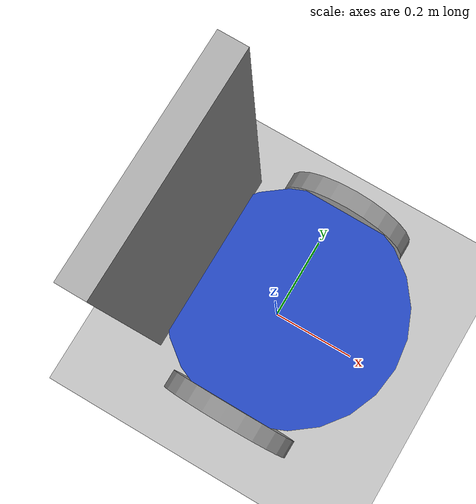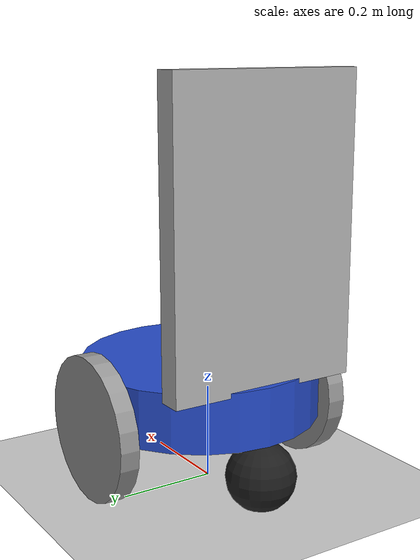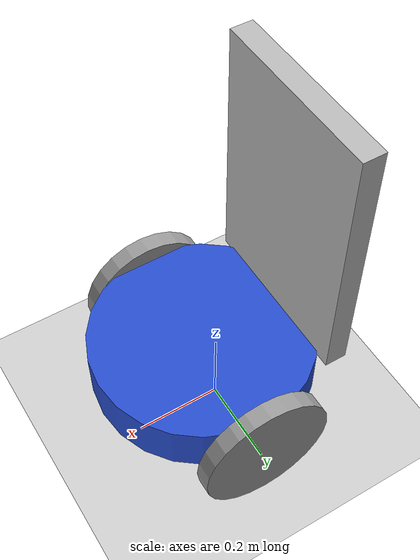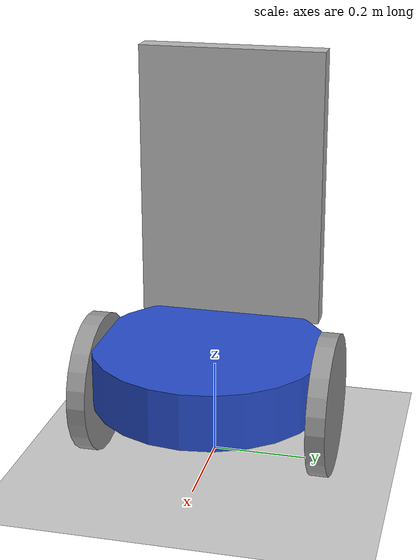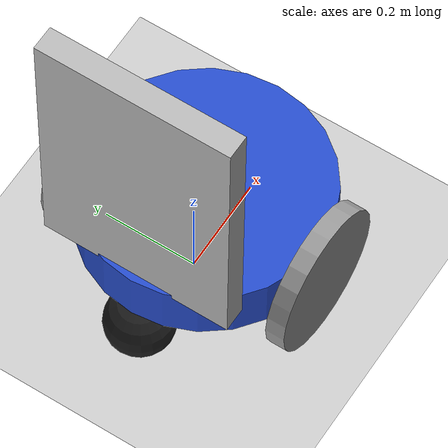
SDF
<sdf version="1.6">
 <world name="default">
  <light name="sun" type="directional">
   <pose>0 0 10 0 -0 0</pose>
   <diffuse>0.8 0.8 0.8 1</diffuse>
   <specular>0.2 0.2 0.2 1</specular>
   <attenuation>
    <range>1000</range>
    <constant>0.9</constant>
    <linear>0.01</linear>
    <quadratic>0.001</quadratic>
   </attenuation>
   <direction>-0.5 0.1 -0.9</direction>
  </light>
  <model name="ground_plane">
   <static>1</static>
   <link name="link">
    <collision name="collision">
     <geometry><plane><normal>0 0 1</normal><size>100 100</size></plane></geometry>
     <surface><friction><ode><mu>100</mu><mu2>50</mu2></ode></friction></surface>
    </collision>
    <visual name="visual">
     <cast_shadows>0</cast_shadows>
     <geometry><plane><normal>0 0 1</normal><size>100 100</size></plane></geometry>
     <material>
      <script><uri>file://media/materials/scripts/gazebo.material</uri><name>Gazebo/Grey</name></script>
     </material>
    </visual>
   </link>
  </model>
  <gravity>0 0 -9.8</gravity>
  <magnetic_field>6e-06 2.3e-05 -4.2e-05</magnetic_field>
  <atmosphere type="adiabatic"/>
  <physics name="default_physics" default="0" type="ode">
   <max_step_size>0.001</max_step_size>
   <real_time_factor>1</real_time_factor>
   <real_time_update_rate>1000</real_time_update_rate>
  </physics>
  <scene><ambient>0.4 0.4 0.4 1</ambient><background>0.7 0.7 0.7 1</background><shadows>1</shadows></scene>
  <audio><device>default</device></audio>
  <spherical_coordinates>
   <surface_model>EARTH_WGS84</surface_model>
   <latitude_deg>0</latitude_deg>
   <longitude_deg>0</longitude_deg>
   <elevation>0</elevation>
   <heading_deg>0</heading_deg>
  </spherical_coordinates>
  <model name="mrobot">
   <link name="base_footprint">
    <inertial>
     <pose>0 0 0.202 0 -0 0</pose>
     <mass>20</mass>
     <inertia><ixx>0.3365</ixx><ixy>0</ixy><ixz>0</ixz><iyy>0.3365</iyy><iyz>0</iyz><izz>0.625</izz></inertia>
    </inertial>
    <collision name="base_footprint_fixed_joint_lump__base_link_collision">
     <pose>0 0 0.202 0 -0 0</pose>
     <geometry><cylinder><length>0.12</length><radius>0.25</radius></cylinder></geometry>
    </collision>
    <collision name="base_footprint_fixed_joint_lump__back_link_collision_1">
     <pose>-0.21 0 0.552 0 -0 0</pose>
     <geometry><box><size>0.05 0.4 0.6</size></box></geometry>
    </collision>
    <visual name="base_footprint_visual">
     <geometry><box><size>0.001 0.001 0.001</size></box></geometry>
     <material><script><uri>__default__</uri><name>__default__</name></script></material>
    </visual>
    <visual name="base_footprint_fixed_joint_lump__base_link_visual_1">
     <pose>0 0 0.202 0 -0 0</pose>
     <geometry><cylinder><length>0.12</length><radius>0.25</radius></cylinder></geometry>
     <material>
      <script><name>Gazebo/Blue</name><uri>file://media/materials/scripts/gazebo.material</uri></script>
     </material>
    </visual>
    <visual name="base_footprint_fixed_joint_lump__back_link_visual_2">
     <pose>-0.21 0 0.552 0 -0 0</pose>
     <geometry><box><size>0.05 0.4 0.6</size></box></geometry>
    </visual>
   </link>
   <link name="front_caster_link">
    <pose>-0.222 0 0.071 0 -0 0</pose>
    <inertial>
     <mass>2</mass>
     <inertia>
      <ixx>0.0040328</ixx>
      <ixy>0</ixy>
      <ixz>0</ixz>
      <iyy>0.0040328</iyy>
      <iyz>0</iyz>
      <izz>0.0040328</izz>
     </inertia>
    </inertial>
    <collision name="front_caster_link_collision">
     <geometry><sphere><radius>0.071</radius></sphere></geometry>
    </collision>
    <visual name="front_caster_link_visual">
     <geometry><sphere><radius>0.071</radius></sphere></geometry>
     <material>
      <script><name>Gazebo/Black</name><uri>file://media/materials/scripts/gazebo.material</uri></script>
     </material>
    </visual>
   </link>
   <joint name="front_caster_joint" type="revolute">
    <child>front_caster_link</child>
    <parent>base_footprint</parent>
    <axis>
     <xyz>0 1 0</xyz>
     <limit><lower>-1e+16</lower><upper>1e+16</upper></limit>
     <dynamics><spring_reference>0</spring_reference><spring_stiffness>0</spring_stiffness></dynamics>
     <use_parent_model_frame>1</use_parent_model_frame>
    </axis>
   </joint>
   <link name="left_wheel_link">
    <pose>0 -0.25 0.152 0 -0 0</pose>
    <inertial>
     <mass>2</mass>
     <inertia>
      <ixx>0.0115167</ixx>
      <ixy>0</ixy>
      <ixz>0</ixz>
      <iyy>0.0115167</iyy>
      <iyz>0</iyz>
      <izz>0.0225</izz>
     </inertia>
    </inertial>
    <collision name="left_wheel_link_collision">
     <pose>0 0 0 1.5708 -0 0</pose>
     <geometry><cylinder><length>0.04</length><radius>0.15</radius></cylinder></geometry>
    </collision>
    <visual name="left_wheel_link_visual">
     <pose>0 0 0 1.5708 -0 0</pose>
     <geometry><cylinder><length>0.04</length><radius>0.15</radius></cylinder></geometry>
     <material>
      <script><name>Gazebo/Gray</name><uri>file://media/materials/scripts/gazebo.material</uri></script>
     </material>
    </visual>
   </link>
   <joint name="left_wheel_joint" type="revolute">
    <child>left_wheel_link</child>
    <parent>base_footprint</parent>
    <axis>
     <xyz>0 1 0</xyz>
     <limit><lower>-1e+16</lower><upper>1e+16</upper></limit>
     <dynamics><spring_reference>0</spring_reference><spring_stiffness>0</spring_stiffness></dynamics>
     <use_parent_model_frame>1</use_parent_model_frame>
    </axis>
   </joint>
   <link name="right_wheel_link">
    <pose>0 0.25 0.152 0 -0 0</pose>
    <inertial>
     <mass>2</mass>
     <inertia>
      <ixx>0.0115167</ixx>
      <ixy>0</ixy>
      <ixz>0</ixz>
      <iyy>0.0115167</iyy>
      <iyz>0</iyz>
      <izz>0.0225</izz>
     </inertia>
    </inertial>
    <collision name="right_wheel_link_collision">
     <pose>0 0 0 1.5708 -0 0</pose>
     <geometry><cylinder><length>0.04</length><radius>0.15</radius></cylinder></geometry>
    </collision>
    <visual name="right_wheel_link_visual">
     <pose>0 0 0 1.5708 -0 0</pose>
     <geometry><cylinder><length>0.04</length><radius>0.15</radius></cylinder></geometry>
     <material>
      <script><name>Gazebo/Gray</name><uri>file://media/materials/scripts/gazebo.material</uri></script>
     </material>
    </visual>
   </link>
   <joint name="right_wheel_joint" type="revolute">
    <child>right_wheel_link</child>
    <parent>base_footprint</parent>
    <axis>
     <xyz>0 1 0</xyz>
     <limit><lower>-1e+16</lower><upper>1e+16</upper></limit>
     <dynamics><spring_reference>0</spring_reference><spring_stiffness>0</spring_stiffness></dynamics>
     <use_parent_model_frame>1</use_parent_model_frame>
    </axis>
   </joint>
   <static>0</static>
   <plugin name="differential_drive_controller" filename="libgazebo_ros_diff_drive.so">
    <rosDebugLevel>Debug</rosDebugLevel>
    <publishWheelTF>1</publishWheelTF>
    <robotNamespace>/</robotNamespace>
    <publishTf>1</publishTf>
    <publishWheelJointState>1</publishWheelJointState>
    <alwaysOn>1</alwaysOn>
    <updateRate>100.0</updateRate>
    <legacyMode>1</legacyMode>
    <leftJoint>left_wheel_joint</leftJoint>
    <rightJoint>right_wheel_joint</rightJoint>
    <wheelSeparation>0.5</wheelSeparation>
    <wheelDiameter>0.3</wheelDiameter>
    <broadcastTF>1</broadcastTF>
    <wheelTorque>30</wheelTorque>
    <wheelAcceleration>1.8</wheelAcceleration>
    <commandTopic>cmd_vel</commandTopic>
    <odometryFrame>odom</odometryFrame>
    <odometryTopic>odom</odometryTopic>
    <robotBaseFrame>base_footprint</robotBaseFrame>
   </plugin>
   <pose>0.032902 -0.003076 -0.001994 -0 0.008993 -0.004849</pose>
  </model>
 </world>
</sdf>
